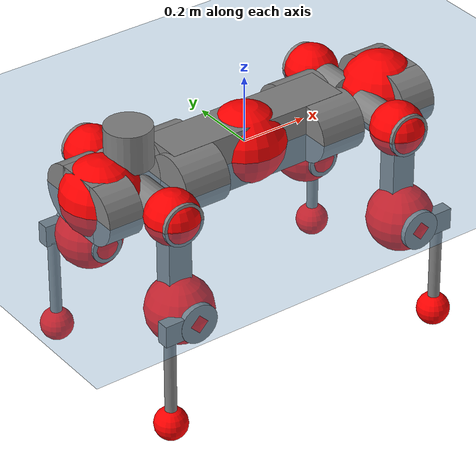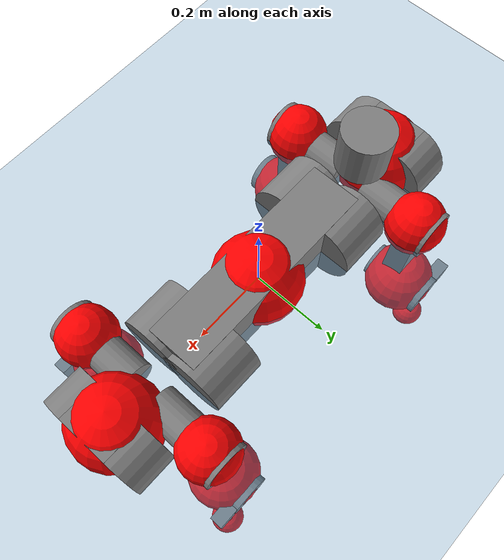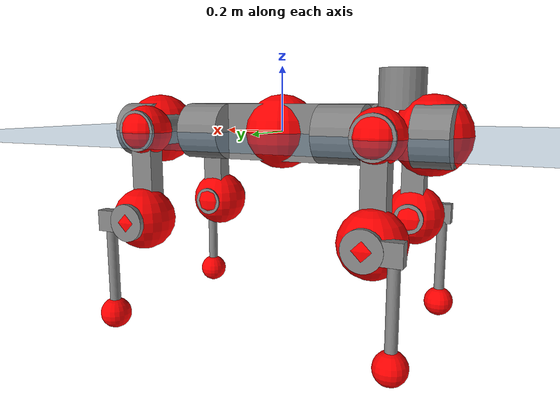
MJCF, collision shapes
<mujoco model="anymal_c">
  <compiler angle="radian" assetdir="assets" balanceinertia="true" inertiafromgeom="false"/>

  <option timestep="0.005" density="1.2" viscosity="2e-05"/>

  <size nkey="1"/>

  <visual>
    <quality shadowsize="8192"/>
    <map shadowclip="0.5"/>
  </visual>

  <default>
    <default class="/">
      <material specular="0" shininess="0.25"/>
      <geom contype="0" conaffinity="0" group="1" solref="-1000 -80"/>
      <site size="0.01 0.005 0.005" group="5"/>
      <general forcelimited="true" forcerange="-80 80" biastype="affine" gainprm="80" biasprm="0 -80 -2"/>
      <default class="anymal_c">
        <joint armature="0.01" damping="0.01" frictionloss="0.1"/>
        <default class="visual">
          <geom type="mesh" group="2"/>
          <default class="visual_zflip"/>
        </default>
        <default class="collision">
          <geom type="cylinder" group="3"/>
          <default class="foot">
            <geom size="0.03 0 0" type="sphere" condim="6" priority="1" friction="0.8 0.02 0.01" solimp="0.015 1 0.03"/>
          </default>
        </default>
      </default>
      <default class="reward_collision_sphere">
        <geom group="5" rgba="1 0 0 1"/>
      </default>
    </default>
  </default>

  <asset>
    <texture type="skybox" colorspace="auto" name="//unnamed_texture_0" builtin="gradient" rgb1="0.95 0.95 0.95" rgb2="0.95 0.95 0.95" width="100" height="600"/>
    <texture type="2d" colorspace="auto" name="texplane" builtin="checker" rgb1="0.345 0.575 0.748" rgb2="0.345 0.575 0.748" markrgb="1 1 1" width="512" height="512"/>
    <texture type="2d" colorspace="linear" name="base" file="base.png"/>
    <texture type="2d" colorspace="linear" name="top_shell" file="top_shell.png"/>
    <texture type="2d" colorspace="linear" name="bottom_shell" file="bottom_shell.png"/>
    <texture type="2d" colorspace="linear" name="remote" file="remote.png"/>
    <texture type="2d" colorspace="linear" name="hatch" file="hatch.png"/>
    <texture type="2d" colorspace="linear" name="handle" file="handle.png"/>
    <texture type="2d" colorspace="linear" name="face" file="face.png"/>
    <texture type="2d" colorspace="linear" name="battery" file="battery.png"/>
    <texture type="2d" colorspace="linear" name="lidar_cage" file="lidar_cage.png"/>
    <texture type="2d" colorspace="linear" name="depth_camera" file="depth_camera.png"/>
    <texture type="2d" colorspace="linear" name="wide_angle_camera" file="wide_angle_camera.png"/>
    <texture type="2d" colorspace="linear" name="lidar" file="lidar.png"/>
    <texture type="2d" colorspace="linear" name="drive" file="drive.png"/>
    <texture type="2d" colorspace="linear" name="hip_l" file="hip_l.png"/>
    <texture type="2d" colorspace="linear" name="shank_l" file="shank_l.png"/>
    <texture type="2d" colorspace="linear" name="foot" file="foot.png"/>
    <texture type="2d" colorspace="linear" name="thigh" file="thigh.png"/>
    <texture type="2d" colorspace="linear" name="shank_r" file="shank_r.png"/>
    <texture type="2d" colorspace="linear" name="hip_r" file="hip_r.png"/>
    <material name="MatPlane" class="/" texture="texplane" texuniform="true" texrepeat="2 2" specular="0.9" shininess="0.5"/>
    <material name="black_plastic" class="/" rgba="0.007 0.007 0.007 1"/>
    <material name="green" class="/" rgba="0.052 0.178 0.033 1"/>
    <material name="red" class="/" rgba="0.178 0.006 0.005 1"/>
    <material name="yellow" class="/" rgba="0.178 0.119 0.006 1"/>
    <material name="lwl" class="/" rgba="0.8 0.8 0.8 1"/>
    <material name="base" class="/" texture="base"/>
    <material name="top_shell" class="/" texture="top_shell"/>
    <material name="bottom_shell" class="/" texture="bottom_shell"/>
    <material name="hip_l" class="/" texture="hip_l"/>
    <material name="thigh" class="/" texture="thigh"/>
    <material name="shank_l" class="/" texture="shank_l"/>
    <material name="foot" class="/" texture="foot"/>
    <material name="hip_r" class="/" texture="hip_r"/>
    <material name="shank" class="/" texture="shank_r"/>
    <material name="hatch" class="/" texture="hatch"/>
    <material name="remote" class="/" texture="remote"/>
    <material name="handle" class="/" texture="handle"/>
    <material name="face" class="/" texture="face"/>
    <material name="depth_camera" class="/" texture="depth_camera"/>
    <material name="wide_angle_camera" class="/" texture="wide_angle_camera"/>
    <material name="battery" class="/" texture="battery"/>
    <material name="lidar_cage" class="/" texture="lidar_cage"/>
    <material name="lidar" class="/" texture="lidar"/>
    <material name="drive" class="/" texture="drive"/>
    <mesh name="base_0" class="/" file="base_0.obj"/>
    <mesh name="base_1" class="/" file="base_1.obj"/>
    <mesh name="base_2" class="/" file="base_2.obj"/>
    <mesh name="base_3" class="/" file="base_3.obj"/>
    <mesh name="base_4" class="/" file="base_4.obj"/>
    <mesh name="base_5" class="/" file="base_5.obj"/>
    <mesh name="top_shell" class="/" file="top_shell.obj"/>
    <mesh name="bottom_shell" class="/" file="bottom_shell.obj"/>
    <mesh name="remote" class="/" file="remote.obj"/>
    <mesh name="handle" class="/" file="handle.obj"/>
    <mesh name="face" class="/" file="face.obj"/>
    <mesh name="wide_angle_camera" class="/" file="wide_angle_camera.obj"/>
    <mesh name="depth_camera" class="/" file="depth_camera.obj"/>
    <mesh name="battery" class="/" file="battery.obj"/>
    <mesh name="lidar_cage" class="/" file="lidar_cage.obj"/>
    <mesh name="lidar" class="/" file="lidar.obj"/>
    <mesh name="drive" class="/" file="drive.obj"/>
    <mesh name="hip_l" class="/" file="hip_l.obj"/>
    <mesh name="thigh" class="/" file="thigh.obj"/>
    <mesh name="shank_l" class="/" file="shank_l.obj"/>
    <mesh name="foot" class="/" file="foot.obj"/>
    <mesh name="hip_r" class="/" file="hip_r.obj"/>
    <mesh name="hatch" class="/" file="hatch.obj"/>
    <mesh name="shank_r" class="/" file="shank_r.obj"/>
  </asset>

  <worldbody>
    <geom name="floor" class="/" size="100 100 0.125" type="plane" group="0" material="MatPlane"/>
    <light name="toplight_shadow" class="/" pos="0 0 5" dir="0.0990148 0.0990148 -0.990148" type="directional" ambient="0.04 0.04 0.04" diffuse="0.55 0.55 0.55" specular="0.12 0.12 0.12"/>
    <light name="toplight_fill" class="/" pos="0 0 5" dir="0.0990148 0.0990148 -0.990148" type="directional" castshadow="false" ambient="0.04 0.04 0.04" diffuse="0.3 0.3 0.3" specular="0.08 0.08 0.08"/>
    <body name="trunk" childclass="anymal_c" pos="0.00137048 -0.000991216 -0.000261767" quat="1 -5.96817e-05 -7.76616e-05 6.21655e-05">
      <inertial pos="0.00252566 -0.000567131 0.0477706" quat="0.501889 0.50089 0.496526 0.500677" mass="17.0804" diaginertia="0.809874 0.350794 0.186459"/>
      <joint name="//unnamed_joint_0" type="free" armature="0" damping="0" frictionloss="0"/>
      <geom name="//unnamed_geom_1" class="visual" material="green" mesh="base_0"/>
      <geom name="//unnamed_geom_2" class="visual" material="yellow" mesh="base_1"/>
      <geom name="//unnamed_geom_3" class="visual" material="red" mesh="base_2"/>
      <geom name="//unnamed_geom_4" class="visual" material="black_plastic" mesh="base_3"/>
      <geom name="//unnamed_geom_5" class="visual" material="lwl" mesh="base_4"/>
      <geom name="//unnamed_geom_6" class="visual" material="base" mesh="base_5"/>
      <geom name="trunk_1" class="collision" size="0.28073 0.0677624 0.0871231" type="box"/>
      <geom name="trunk_2" class="collision" size="0.0871231 0.0701825" pos="0.226895 0.0623678 0" quat="0.707107 0 0.707107 0"/>
      <geom name="trunk_3" class="collision" size="0.0871231 0.0701825" pos="-0.226895 0.0623678 0" quat="0.707107 0 0.707107 0"/>
      <geom name="trunk_4" class="collision" size="0.0871231 0.0701825" pos="0.226895 -0.0623678 0" quat="0.707107 0 0.707107 0"/>
      <geom name="trunk_5" class="collision" size="0.0871231 0.0701825" pos="-0.226895 -0.0623678 0" quat="0.707107 0 0.707107 0"/>
      <geom name="//unnamed_geom_12" class="visual" material="top_shell" mesh="top_shell"/>
      <geom name="//unnamed_geom_13" class="visual" material="bottom_shell" mesh="bottom_shell"/>
      <geom name="//unnamed_geom_14" class="visual" material="remote" mesh="remote"/>
      <geom name="//unnamed_geom_15" class="visual" material="handle" mesh="handle"/>
      <geom name="//unnamed_geom_16" class="visual" pos="0.432404 0 0" quat="1 0 0 0" material="face" mesh="face"/>
      <geom name="trunk_6" class="collision" size="0.0532419 0.0677624 0.0871231" pos="0.489779 0 0" type="box"/>
      <geom name="//unnamed_geom_18" class="collision" size="0.0871231 0.0532419" pos="0.489779 0.0623678 0" quat="0.707107 0 0.707107 0"/>
      <geom name="//unnamed_geom_19" class="collision" size="0.0871231 0.0532419" pos="0.489779 -0.0623678 0" quat="0.707107 0 0.707107 0"/>
      <geom name="//unnamed_geom_20" class="visual" pos="0.481587 0 -0.0277656" quat="0.965926 0 0.258819 0" material="depth_camera" mesh="depth_camera"/>
      <geom name="//unnamed_geom_21" class="visual" pos="0.535158 0 0.01452" material="wide_angle_camera" mesh="wide_angle_camera"/>
      <geom name="//unnamed_geom_22" class="visual_zflip" pos="-0.432404 0 0" quat="0 0 0 1" material="face" mesh="face"/>
      <geom name="trunk_7" class="collision" size="0.0532419 0.0677624 0.0871231" pos="-0.489779 0 0" quat="0 0 0 1" type="box"/>
      <geom name="//unnamed_geom_24" class="collision" size="0.0871231 0.0532419" pos="-0.489779 -0.0623678 0" quat="0 -0.707107 0 0.707107"/>
      <geom name="//unnamed_geom_25" class="collision" size="0.0871231 0.0532419" pos="-0.489779 0.0623678 0" quat="0 -0.707107 0 0.707107"/>
      <geom name="//unnamed_geom_26" class="visual" pos="-0.481587 0 -0.0277656" quat="0 -0.258819 0 0.965926" material="depth_camera" mesh="depth_camera"/>
      <geom name="//unnamed_geom_27" class="visual_zflip" pos="-0.535158 0 0.01452" quat="0 0 0 1" material="wide_angle_camera" mesh="wide_angle_camera"/>
      <geom name="//unnamed_geom_28" class="visual" material="battery" mesh="battery"/>
      <geom name="//unnamed_geom_29" class="visual" pos="0 0.066123 0.0287335" quat="0.683013 -0.183013 0.183013 0.683013" material="depth_camera" mesh="depth_camera"/>
      <geom name="//unnamed_geom_30" class="visual" pos="0 -0.066123 0.0287335" quat="0.683013 0.183013 0.183013 -0.683013" material="depth_camera" mesh="depth_camera"/>
      <geom name="//unnamed_geom_31" class="visual" pos="-0.379722 0 0.0712907" quat="1 0 0 0" material="lidar_cage" mesh="lidar_cage"/>
      <geom name="trunk_8" class="collision" size="0.0677624 0.0580821" pos="-0.379722 0 0.129487"/>
      <geom name="//unnamed_geom_33" class="visual" pos="-0.379722 -5.98049e-05 0.137926" quat="0.707107 0 0 -0.707107" material="lidar" mesh="lidar"/>
      <geom name="//unnamed_geom_34" class="visual" pos="0.312854 0.0926888 -1.36228e-09" quat="0.258819 0.965926 0 0" material="drive" mesh="drive"/>
      <geom name="//unnamed_geom_35" class="visual" pos="0.312854 -0.0926888 1.36228e-09" quat="0.258819 -0.965926 0 0" material="drive" mesh="drive"/>
      <geom name="//unnamed_geom_36" class="visual" pos="-0.312854 0.0926888 1.36228e-09" quat="0 0 0.965926 -0.258819" material="drive" mesh="drive"/>
      <geom name="//unnamed_geom_37" class="visual" pos="-0.312854 -0.0926888 -1.36228e-09" quat="0 0 -0.965926 -0.258819" material="drive" mesh="drive"/>
      <geom name="//unnamed_geom_38" class="visual" pos="0.12101 0 0.0708057" quat="1 0 0 0" material="hatch" mesh="hatch"/>
      <geom name="//unnamed_geom_39" class="reward_collision_sphere" size="0.116164"/>
      <geom name="//unnamed_geom_40" class="reward_collision_sphere" size="0.116164" pos="0.469437 0 0"/>
      <geom name="//unnamed_geom_41" class="reward_collision_sphere" size="0.116164" pos="-0.469437 0 0"/>
      <site name="imu" pos="0.257143 0.00484801 0.0353297" size="0.00968035"/>
      <camera name="track" pos="0 -1.78194 0" quat="0.707107 0.707107 0 0" mode="trackcom"/>
      <camera name="ego_camera" pos="0.469437 0 -0.0387977" quat="-0.5 -0.5 0.5 0.5"/>
      <body name="LF_HIP" pos="0.313814 0.0930372 0.00141915" quat="0.259046 0.965865 -0.00038161 -0.000232889">
        <inertial pos="0.0574701 -0.0123588 -0.00785489" quat="-0.128214 0.710417 -0.135561 0.678596" mass="2.53032" diaginertia="0.00725103 0.00276324 0.00281356"/>
        <joint name="LF_HAA" pos="0 0 0" axis="0.999908 -0.0114479 0.00730001" range="-0.726152 0.490308" armature="0.00876304" damping="0.0111603" frictionloss="0.0922476"/>
        <geom name="//unnamed_geom_42" class="visual" pos="0 -8.01368e-05 1.31624e-05" quat="0.258819 -0.965926 0 0" material="hip_l" mesh="hip_l"/>
        <geom name="//unnamed_geom_43" class="visual" pos="0.0624873 -0.0737404 -0.0431582" quat="0.183013 -0.683013 0.683013 0.183013" material="drive" mesh="drive"/>
        <geom name="//unnamed_geom_44" class="collision" size="0.0484017 0.0677624" pos="0.0624873 -0.0106558 -0.00669745" quat="-0.353553 -0.612372 0.612372 -0.353553"/>
        <body name="LF_THIGH" pos="0.0634734 -0.0647499 -0.0407613" quat="0.183118 -0.682694 0.683338 0.182881">
          <inertial pos="0.032493 0.000105114 -0.240281" quat="0.992657 -0.00418054 -0.0821394 0.0887012" mass="2.81287" diaginertia="0.037621 0.0169495 0.00364558"/>
          <joint name="LF_HFE" pos="0 0 0" axis="0.999991 0.00423427 -0.000104019" range="-3.16275 3.13701" armature="0.0101496" damping="0.0126288" frictionloss="0.0999578"/>
          <geom name="//unnamed_geom_45" class="visual" pos="0.00302867 4.77247e-06 0" quat="0.707107 0 0 -0.707107" material="thigh" mesh="thigh"/>
          <geom name="//unnamed_geom_46" class="collision" size="0.0629223 0.0387214" pos="0.0417277 0 0" quat="0.5 0.5 -0.5 -0.5"/>
          <geom name="//unnamed_geom_47" class="collision" size="0.0363013 0.029041 0.136797" pos="0.0312958 0 -0.137066" quat="0.707107 0 0 -0.707107" type="box"/>
          <geom name="//unnamed_geom_48" class="visual" pos="0.104632 0 -0.276433" quat="1 0 0 0" material="drive" mesh="drive"/>
          <geom name="//unnamed_geom_49" class="collision" size="0.0484017 0.0677624" pos="0.0316088 0 -0.276433" quat="0.707107 0 0.707107 0"/>
          <geom name="//unnamed_geom_50" class="reward_collision_sphere" size="0.0774428" pos="0.0260798 0 0"/>
          <body name="LF_SHANK" pos="0.104901 -0.00248709 -0.276244" quat="1 -3.4979e-07 3.45296e-06 1.3962e-05">
            <inertial pos="0.00472956 -0.0544705 -0.078279" quat="0.992322 -0.121136 -0.00756038 -0.0237777" mass="0.52713" diaginertia="0.0124116 0.00516837 0.000942928"/>
            <joint name="LF_KFE" pos="0 0 0" axis="0.999994 0.00323954 0.000796806" range="-3.1395 3.13148" armature="0.0097574" damping="0.00542758" frictionloss="0.0990497"/>
            <geom name="//unnamed_geom_51" class="visual" pos="0.000987582 0.00526584 0" quat="0.707107 0 0 -0.707107" material="shank_l" mesh="shank_l"/>
            <geom name="LF_kfe_act" class="collision" size="0.0580821 0.0193607" pos="0.0208639 0 0" quat="0.5 0.5 -0.5 -0.5"/>
            <geom name="//unnamed_geom_53" class="collision" size="0.055661 0.0326712 0.0183927" pos="0.0208639 -0.0512298 0" quat="0.5 0.5 -0.5 -0.5" type="box"/>
            <geom name="//unnamed_geom_54" class="visual" pos="0.0136134 -0.0766638 -0.327811" quat="0.382683 0 0 -0.92388" material="foot" mesh="foot"/>
            <geom name="LF_calf" class="collision" size="0.0169406 0.136737" pos="0.0136137 -0.0783607 -0.163906" quat="0.707107 0 0 -0.707107"/>
            <geom name="LF_foot" class="foot" size="0.0297131" pos="0.0136137 -0.0783607 -0.305987" quat="0.707107 0 0 -0.707107"/>
            <geom name="//unnamed_geom_57" class="reward_collision_sphere" size="0.0968035" pos="-0.0521597 0 0"/>
            <geom name="//unnamed_geom_58" class="reward_collision_sphere" size="0.0484017" pos="0.0136137 -0.0783607 -0.305987"/>
            <site name="LF_foot" class="foot" pos="0.0136137 -0.0783607 -0.305987" quat="0.707107 0 0 -0.707107" size="0.00968035"/>
          </body>
        </body>
      </body>
      <body name="RF_HIP" pos="0.311408 -0.0912529 -0.000165539" quat="0.25876 -0.965942 -0.000142039 -0.00010534">
        <inertial pos="0.0612362 0.0132323 -0.00973291" quat="0.135193 0.677622 0.129276 0.711224" mass="2.5957" diaginertia="0.00739474 0.0028325 0.00289042"/>
        <joint name="RF_HAA" pos="0 0 0" axis="0.999963 -0.00846542 0.00159689" range="-0.527172 0.732892" armature="0.00980841" damping="0.0133438" frictionloss="0.0921703"/>
        <geom name="//unnamed_geom_59" class="visual" pos="0 8.01362e-05 1.31624e-05" quat="0.258819 0.965926 0 0" material="hip_r" mesh="hip_r"/>
        <geom name="//unnamed_geom_60" class="visual" pos="0.0624873 0.0737404 -0.0431582" quat="0.183013 0.683013 0.683013 -0.183013" material="drive" mesh="drive"/>
        <geom name="//unnamed_geom_61" class="collision" size="0.0484017 0.0677624" pos="0.0624873 0.0106558 -0.00669745" quat="-0.353553 0.612372 0.612372 0.353553"/>
        <body name="RF_THIGH" pos="0.062901 0.0656048 -0.0415713" quat="0.183004 0.682956 0.683048 -0.183102">
          <inertial pos="0.033135 0.00214549 -0.238402" quat="0.992737 -0.00505576 -0.0803387 0.0894024" mass="2.75944" diaginertia="0.0370975 0.016698 0.00355988"/>
          <joint name="RF_HFE" pos="0 0 0" axis="0.999988 0.00421467 0.00239166" stiffness="0.00364235" range="-3.15333 3.12128" armature="0.00997227" damping="0.00390191" frictionloss="0.097779"/>
          <geom name="//unnamed_geom_62" class="visual" pos="0.00302867 4.77247e-06 0" quat="0.707107 0 0 -0.707107" material="thigh" mesh="thigh"/>
          <geom name="//unnamed_geom_63" class="collision" size="0.0629223 0.0387214" pos="0.0417277 0 0" quat="0.5 0.5 0.5 0.5"/>
          <geom name="//unnamed_geom_64" class="collision" size="0.0363013 0.029041 0.136797" pos="0.0312958 0 -0.137066" quat="0.707107 0 0 0.707107" type="box"/>
          <geom name="//unnamed_geom_65" class="visual" pos="0.104632 0 -0.276433" quat="1 0 0 0" material="drive" mesh="drive"/>
          <geom name="//unnamed_geom_66" class="collision" size="0.0484017 0.0677624" pos="0.0316088 0 -0.276433" quat="0.707107 0 0.707107 0"/>
          <geom name="//unnamed_geom_67" class="reward_collision_sphere" size="0.0774428" pos="0.0260798 0 0"/>
          <body name="RF_SHANK" pos="0.104054 -0.000683206 -0.275168" quat="0.999999 0.000862311 0.000568825 -0.00015912">
            <inertial pos="0.00819187 0.0548531 -0.0770057" quat="0.992929 0.115816 -0.00237819 0.0259493" mass="0.524243" diaginertia="0.0123486 0.00522948 0.000979511"/>
            <joint name="RF_KFE" pos="0 0 0" axis="0.999999 -0.000624709 0.00147541" range="-3.16777 3.1323" armature="0.00993622" damping="0.0157369" frictionloss="0.102961"/>
            <geom name="//unnamed_geom_68" class="visual" pos="0.000987577 -0.00526583 0" quat="0.707107 0 0 0.707107" material="shank" mesh="shank_r"/>
            <geom name="RF_kfe_act" class="collision" size="0.0580821 0.0193607" pos="0.0208639 0 0" quat="0.5 0.5 0.5 0.5"/>
            <geom name="//unnamed_geom_70" class="collision" size="0.055661 0.0326712 0.0183927" pos="0.0208639 0.0512298 0" quat="0.5 0.5 0.5 0.5" type="box"/>
            <geom name="//unnamed_geom_71" class="visual" pos="0.0136139 0.0766638 -0.327811" quat="0.382683 0 0 0.92388" material="foot" mesh="foot"/>
            <geom name="RF_calf" class="collision" size="0.0169406 0.136737" pos="0.0136137 0.0783607 -0.163906" quat="0.707107 0 0 0.707107"/>
            <geom name="RF_foot" class="foot" size="0.0288109" pos="0.0136137 0.0783607 -0.305987" quat="0.707107 0 0 0.707107"/>
            <geom name="//unnamed_geom_74" class="reward_collision_sphere" size="0.0968035" pos="-0.0521597 0 0"/>
            <geom name="//unnamed_geom_75" class="reward_collision_sphere" size="0.0484017" pos="0.0136137 0.0783607 -0.305987"/>
            <site name="RF_foot" class="foot" pos="0.0136137 0.0783607 -0.305987" quat="0.707107 0 0 0.707107" size="0.00968035"/>
          </body>
        </body>
      </body>
      <body name="LH_HIP" pos="-0.309945 0.0919937 0.000514247" quat="2.49216e-05 -0.000126322 0.965884 -0.258977">
        <inertial pos="0.0610624 0.0111624 -0.00786293" quat="0.132703 0.676885 0.124251 0.713286" mass="2.54504" diaginertia="0.00725722 0.00274951 0.00277854"/>
        <joint name="LH_HAA" pos="0 0 0" axis="0.999995 0.00295821 -0.00137489" range="-0.495793 0.702337" armature="0.00967751" damping="0.0101044" frictionloss="0.10108"/>
        <geom name="//unnamed_geom_76" class="visual" pos="0 8.01362e-05 1.31624e-05" quat="-0.258819 -0.965926 0 0" material="hip_r" mesh="hip_r"/>
        <geom name="//unnamed_geom_77" class="visual" pos="0.0624873 0.0737404 -0.0431582" quat="0.183013 0.683013 0.683013 -0.183013" material="drive" mesh="drive"/>
        <geom name="//unnamed_geom_78" class="collision" size="0.0484017 0.0677624" pos="0.0624873 0.0106558 -0.00669745" quat="-0.353553 0.612372 0.612372 0.353553"/>
        <body name="LH_THIGH" pos="0.0611116 0.0640046 -0.041347" quat="0.182982 0.683136 0.682994 -0.182654">
          <inertial pos="0.032262 0.00176991 -0.237917" quat="0.992502 -0.0046757 -0.0830101 0.0896003" mass="2.79177" diaginertia="0.0374923 0.0168418 0.0035029"/>
          <joint name="LH_HFE" pos="0 0 0" axis="0.999984 0.0040873 0.00383913" range="-3.14283 3.13281" armature="0.0104994" damping="0.0046217" frictionloss="0.101665"/>
          <geom name="//unnamed_geom_79" class="visual" pos="0.00302867 4.77247e-06 0" quat="0.707107 0 0 -0.707107" material="thigh" mesh="thigh"/>
          <geom name="//unnamed_geom_80" class="collision" size="0.0629223 0.0387214" pos="0.0417277 0 0" quat="0.5 0.5 -0.5 -0.5"/>
          <geom name="//unnamed_geom_81" class="collision" size="0.0363013 0.029041 0.136797" pos="0.0312958 0 -0.137066" quat="0.707107 0 0 -0.707107" type="box"/>
          <geom name="//unnamed_geom_82" class="visual" pos="0.104632 0 -0.276433" quat="1 0 0 0" material="drive" mesh="drive"/>
          <geom name="//unnamed_geom_83" class="collision" size="0.0484017 0.0677624" pos="0.0316088 0 -0.276433" quat="0.707107 0 0.707107 0"/>
          <geom name="//unnamed_geom_84" class="reward_collision_sphere" size="0.0774428" pos="0.0260798 0 0"/>
          <body name="LH_SHANK" pos="0.105346 8.01587e-05 -0.279016" quat="0.999999 -0.000953496 -0.000740768 -0.000112904">
            <inertial pos="0.0062218 0.0544598 -0.0759146" quat="0.993007 0.115255 0.00270626 0.0254111" mass="0.524398" diaginertia="0.0126296 0.00526031 0.000958572"/>
            <joint name="LH_KFE" pos="0 0 0" axis="0.999973 -0.00246886 0.00689135" range="-3.14324 3.14646" armature="0.00961259" damping="0.00788676" frictionloss="0.0940192"/>
            <geom name="//unnamed_geom_85" class="visual" pos="0.000987577 -0.00526583 0" quat="-0.707107 0 0 -0.707107" material="shank" mesh="shank_r"/>
            <geom name="LH_kfe_act" class="collision" size="0.0580821 0.0193607" pos="0.0208639 0 0" quat="0.5 0.5 -0.5 -0.5"/>
            <geom name="//unnamed_geom_87" class="collision" size="0.055661 0.0326712 0.0183927" pos="0.0208639 0.0512298 0" quat="0.5 0.5 -0.5 -0.5" type="box"/>
            <geom name="//unnamed_geom_88" class="visual" pos="0.0136139 0.0766638 -0.327811" quat="-0.382683 0 0 -0.92388" material="foot" mesh="foot"/>
            <geom name="LH_calf" class="collision" size="0.0169406 0.136737" pos="0.0136137 0.0783607 -0.163906" quat="0.707107 0 0 -0.707107"/>
            <geom name="LH_foot" class="foot" size="0.0296977" pos="0.0136137 0.0783607 -0.305987" quat="0.707107 0 0 -0.707107"/>
            <geom name="//unnamed_geom_91" class="reward_collision_sphere" size="0.0968035" pos="-0.0521597 0 0"/>
            <geom name="//unnamed_geom_92" class="reward_collision_sphere" size="0.0484017" pos="0.0136137 0.0783607 -0.305987"/>
            <site name="LH_foot" class="foot" pos="0.0136137 0.0783607 -0.305987" quat="0.707107 0 0 -0.707107" size="0.00968035"/>
          </body>
        </body>
      </body>
      <body name="RH_HIP" pos="-0.31465 -0.093609 0.000106905" quat="-8.23337e-05 -0.000216226 -0.965796 -0.259302">
        <inertial pos="0.0593533 -0.0145593 -0.00811034" quat="-0.131701 0.703489 -0.135897 0.685048" mass="2.51699" diaginertia="0.00715515 0.00274446 0.00280168"/>
        <joint name="RH_HAA" pos="0 0 0" axis="0.999936 -0.0058546 -0.00966686" stiffness="0.00106977" range="-0.726493 0.474499" armature="0.0100022" damping="0.00578498" frictionloss="0.0952563"/>
        <geom name="//unnamed_geom_93" class="visual" pos="0 -8.01368e-05 1.31624e-05" quat="-0.258819 0.965926 0 0" material="hip_l" mesh="hip_l"/>
        <geom name="//unnamed_geom_94" class="visual" pos="0.0624873 -0.0737404 -0.0431582" quat="-0.183013 0.683013 -0.683013 -0.183013" material="drive" mesh="drive"/>
        <geom name="//unnamed_geom_95" class="collision" size="0.0484017 0.0677624" pos="0.0624873 -0.0106558 -0.00669745" quat="0.353553 0.612372 -0.612372 0.353553"/>
        <body name="RH_THIGH" pos="0.0627998 -0.0638561 -0.0394884" quat="-0.182689 0.682938 -0.683115 -0.183233">
          <inertial pos="0.0318356 -0.000466184 -0.238898" quat="0.994106 0.00142198 -0.0767408 0.076565" mass="2.79072" diaginertia="0.0373915 0.0169488 0.00368569"/>
          <joint name="RH_HFE" pos="0 0 0" axis="0.999998 -0.00115008 0.00162595" range="-3.14513 3.12374" armature="0.0101041" damping="0" frictionloss="0.101235"/>
          <geom name="//unnamed_geom_96" class="visual" pos="0.00302867 4.77247e-06 0" quat="0.707107 0 0 -0.707107" material="thigh" mesh="thigh"/>
          <geom name="//unnamed_geom_97" class="collision" size="0.0629223 0.0387214" pos="0.0417277 0 0" quat="0.5 0.5 0.5 0.5"/>
          <geom name="//unnamed_geom_98" class="collision" size="0.0363013 0.029041 0.136797" pos="0.0312958 0 -0.137066" quat="0.707107 0 0 0.707107" type="box"/>
          <geom name="//unnamed_geom_99" class="visual" pos="0.104632 0 -0.276433" quat="1 0 0 0" material="drive" mesh="drive"/>
          <geom name="//unnamed_geom_100" class="collision" size="0.0484017 0.0677624" pos="0.0316088 0 -0.276433" quat="0.707107 0 0.707107 0"/>
          <geom name="//unnamed_geom_101" class="reward_collision_sphere" size="0.0774428" pos="0.0260798 0 0"/>
          <body name="RH_SHANK" pos="0.104528 0.000140141 -0.276558" quat="1 0.000104436 3.35232e-05 -9.12966e-05">
            <inertial pos="0.00451108 -0.0564556 -0.0765424" quat="0.992886 -0.116238 -0.00137774 -0.0257537" mass="0.537196" diaginertia="0.0125028 0.00522935 0.000954849"/>
            <joint name="RH_KFE" pos="0 0 0" axis="0.999983 0.00458789 0.00354929" stiffness="0.00242535" range="-3.1161 3.17014" armature="0.00964609" damping="0.00758483" frictionloss="0.105796"/>
            <geom name="//unnamed_geom_102" class="visual" pos="0.000987582 0.00526584 0" quat="0.707107 0 0 -0.707107" material="shank_l" mesh="shank_l"/>
            <geom name="RH_kfe_act" class="collision" size="0.0580821 0.0193607" pos="0.0208639 0 0" quat="0.5 0.5 0.5 0.5"/>
            <geom name="//unnamed_geom_104" class="collision" size="0.055661 0.0326712 0.0183927" pos="0.0208639 -0.0512298 0" quat="0.5 0.5 0.5 0.5" type="box"/>
            <geom name="//unnamed_geom_105" class="visual" pos="0.0136134 -0.0766638 -0.327811" quat="0.382683 0 0 -0.92388" material="foot" mesh="foot"/>
            <geom name="RH_calf" class="collision" size="0.0169406 0.136737" pos="0.0136137 -0.0783607 -0.163906" quat="0.707107 0 0 0.707107"/>
            <geom name="RH_foot" class="foot" size="0.0281738" pos="0.0136137 -0.0783607 -0.305987" quat="0.707107 0 0 0.707107"/>
            <geom name="//unnamed_geom_108" class="reward_collision_sphere" size="0.0968035" pos="-0.0521597 0 0"/>
            <geom name="//unnamed_geom_109" class="reward_collision_sphere" size="0.0484017" pos="0.0136137 -0.0783607 -0.305987"/>
            <site name="RH_foot" class="foot" pos="0.0136137 -0.0783607 -0.305987" quat="0.707107 0 0 0.707107" size="0.00968035"/>
          </body>
        </body>
      </body>
    </body>
  </worldbody>

  <contact>
    <pair class="/" geom1="floor" geom2="LF_foot" name="//unnamed_contact_0"/>
    <pair class="/" geom1="floor" geom2="RF_foot" name="//unnamed_contact_1"/>
    <pair class="/" geom1="floor" geom2="LH_foot" name="//unnamed_contact_2"/>
    <pair class="/" geom1="floor" geom2="RH_foot" name="//unnamed_contact_3"/>
  </contact>

  <actuator>
    <general name="LF_HAA" class="/" joint="LF_HAA" forcerange="-77.757 77.757" gainprm="77.8921" biasprm="0 -77.8921 -1.8774"/>
    <general name="LF_HFE" class="/" joint="LF_HFE" forcerange="-74.8769 74.8769" gainprm="77.8921" biasprm="0 -77.8921 -1.8774"/>
    <general name="LF_KFE" class="/" joint="LF_KFE" forcerange="-74.7517 74.7517" gainprm="77.8921" biasprm="0 -77.8921 -1.8774"/>
    <general name="RF_HAA" class="/" joint="RF_HAA" forcerange="-78.7774 78.7774" gainprm="77.8921" biasprm="0 -77.8921 -1.8774"/>
    <general name="RF_HFE" class="/" joint="RF_HFE" forcerange="-79.6936 79.6936" gainprm="77.8921" biasprm="0 -77.8921 -1.8774"/>
    <general name="RF_KFE" class="/" joint="RF_KFE" forcerange="-76.3116 76.3116" gainprm="77.8921" biasprm="0 -77.8921 -1.8774"/>
    <general name="LH_HAA" class="/" joint="LH_HAA" forcerange="-77.4165 77.4165" gainprm="77.8921" biasprm="0 -77.8921 -1.8774"/>
    <general name="LH_HFE" class="/" joint="LH_HFE" forcerange="-77.1083 77.1083" gainprm="77.8921" biasprm="0 -77.8921 -1.8774"/>
    <general name="LH_KFE" class="/" joint="LH_KFE" forcerange="-80.7346 80.7346" gainprm="77.8921" biasprm="0 -77.8921 -1.8774"/>
    <general name="RH_HAA" class="/" joint="RH_HAA" forcerange="-78.3885 78.3885" gainprm="77.8921" biasprm="0 -77.8921 -1.8774"/>
    <general name="RH_HFE" class="/" joint="RH_HFE" forcerange="-74.972 74.972" gainprm="77.8921" biasprm="0 -77.8921 -1.8774"/>
    <general name="RH_KFE" class="/" joint="RH_KFE" forcerange="-71.5012 71.5012" gainprm="77.8921" biasprm="0 -77.8921 -1.8774"/>
  </actuator>

  <sensor>
    <gyro site="imu" name="imu_angular_velocity"/>
    <velocimeter site="imu" name="imu_linear_velocity"/>
    <framelinvel objtype="site" objname="LF_foot" name="LF_foot_global_linear_velocity"/>
    <framelinvel objtype="site" objname="RF_foot" name="RF_foot_global_linear_velocity"/>
    <framelinvel objtype="site" objname="LH_foot" name="LH_foot_global_linear_velocity"/>
    <framelinvel objtype="site" objname="RH_foot" name="RH_foot_global_linear_velocity"/>
  </sensor>

  <keyframe>
    <key name="home" qpos="0 0 0.55 1 0 0 0 0 0.4 -0.8 0 -0.4 0.8 0 -0.4 0.8 0 0.4 -0.8"/>
  </keyframe>
</mujoco>
